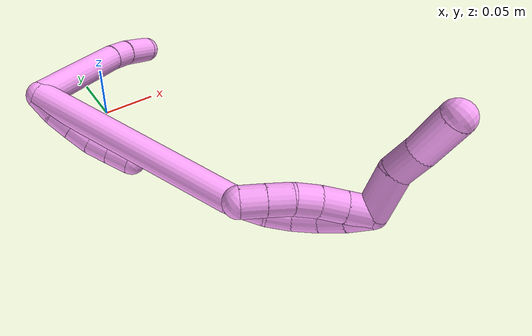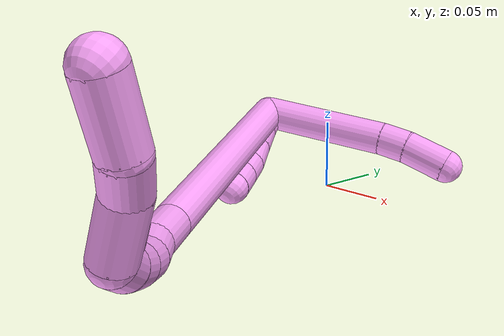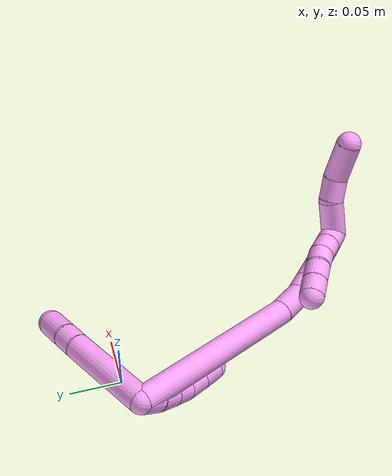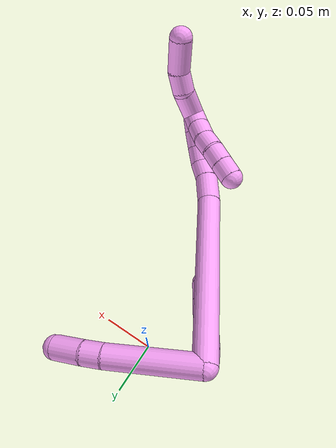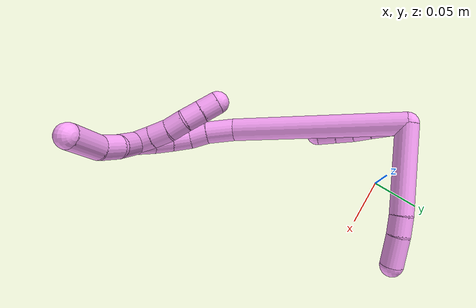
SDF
<sdf version="1.7">
 <world name="default">
  <model name="photoneo_s_sensor">
   <static>1</static>
   <pose>0 0 2 1.57079 1.57079 3.14159</pose>
   <link name="link">
    <inertial><mass>0.1</mass></inertial>
    <sensor name="sensor" type="depth">
     <update_rate>30</update_rate>
     <camera>
      <horizontal_fov>1.22</horizontal_fov>
      <image><width>1920</width><height>1200</height><format>B8G8R8</format></image>
      <clip><near>0.1</near><far>4</far></clip>
      <depth_camera><output>points</output></depth_camera>
     </camera>
     <plugin name="camera_plugin" filename="libgazebo_ros_depth_camera.so">
      <baseline>0.2</baseline>
      <alwaysOn>1</alwaysOn>
      <updateRate>0.0</updateRate>
      <cameraName>camera_ir</cameraName>
      <imageTopicName>/camera/color/image_raw</imageTopicName>
      <cameraInfoTopicName>/camera/color/camera_info</cameraInfoTopicName>
      <depthImageTopicName>/camera/depth/image_raw</depthImageTopicName>
      <depthImageCameraInfoTopicName>/camera/depth/camera_info</depthImageCameraInfoTopicName>
      <pointCloudTopicName>/camera/depth/points</pointCloudTopicName>
      <frameName>fr_optical</frameName>
      <pointCloudCutoff>0.1</pointCloudCutoff>
      <pointCloudCutoffMax>2.0</pointCloudCutoffMax>
      <distortionK1>0</distortionK1>
      <distortionK2>0</distortionK2>
      <distortionK3>0</distortionK3>
      <distortionT1>0</distortionT1>
      <distortionT2>0</distortionT2>
      <CxPrime>0</CxPrime>
      <Cx>0</Cx>
      <Cy>0</Cy>
      <focalLength>0</focalLength>
      <hackBaseline>0</hackBaseline>
     </plugin>
    </sensor>
   </link>
  </model>
  <model name="bin">
   <static>1</static>
   <link name="bottom">
    <collision name="collision-bottom">
     <pose>0 0 -0.01 0 -0 0</pose>
     <geometry><box><size>0.8 0.6 0.02</size></box></geometry>
     <surface>
      <friction><ode><mu>100</mu><mu2>100</mu2></ode></friction>
      <contact><collide_bitmask>65535</collide_bitmask></contact>
     </surface>
    </collision>
   </link>
   <link name="west_wall">
    <collision name="collision-west_wall">
     <pose>-0.41 0 0.1 0 -0 0</pose>
     <geometry><box><size>0.02 0.6 0.2</size></box></geometry>
     <surface>
      <friction><ode><mu>100</mu><mu2>100</mu2></ode></friction>
      <contact><collide_bitmask>65535</collide_bitmask></contact>
     </surface>
    </collision>
   </link>
   <link name="east_wall">
    <collision name="collision-east_wall">
     <pose>0.41 0 0.1 0 -0 0</pose>
     <geometry><box><size>0.02 0.6 0.2</size></box></geometry>
     <surface>
      <friction><ode><mu>100</mu><mu2>100</mu2></ode></friction>
      <contact><collide_bitmask>65535</collide_bitmask></contact>
     </surface>
    </collision>
   </link>
   <link name="south_wall">
    <collision name="collision-south_wall">
     <pose>0 -0.31 0.1 0 -0 0</pose>
     <geometry><box><size>0.8 0.02 0.2</size></box></geometry>
     <surface>
      <friction><ode><mu>100</mu><mu2>100</mu2></ode></friction>
      <contact><collide_bitmask>65535</collide_bitmask></contact>
     </surface>
    </collision>
   </link>
   <link name="north_wall">
    <collision name="collision-north_wall">
     <pose>0 0.31 0.1 0 -0 0</pose>
     <geometry><box><size>0.8 0.02 0.2</size></box></geometry>
     <surface>
      <friction><ode><mu>100</mu><mu2>100</mu2></ode></friction>
      <contact><collide_bitmask>65535</collide_bitmask></contact>
     </surface>
    </collision>
   </link>
  </model>
  <model name="4">
   <static>0</static>
   <link name="4">
    <collision name="collision-cylinder-e_1_2_8">
     <pose>-0.046162 -0.013557 -0.001276 1.66463 -1.28394 -1.37516</pose>
     <geometry><cylinder><radius>0.0125</radius><length>0.096257</length></cylinder></geometry>
     <surface>
      <friction><ode><mu>1.16</mu><mu2>1.16</mu2><slip1>0</slip1><slip2>0</slip2></ode></friction>
      <contact><ode><kp>1e+06</kp><kd>1</kd><max_vel>0</max_vel><min_depth>0.001</min_depth></ode></contact>
     </surface>
    </collision>
    <visual name="visual-cylinder-e_1_2_8">
     <pose>-0.046162 -0.013557 -0.001276 1.66463 -1.28394 -1.37516</pose>
     <geometry><cylinder><radius>0.0125</radius><length>0.096257</length></cylinder></geometry>
     <material><ambient>1 0.65098 0.996078 1</ambient></material>
    </visual>
    <collision name="collision-cylinder-e_2_8_9">
     <pose>-0.102461 -0.029706 -0.001824 1.29689 -1.3113 -1.0554</pose>
     <geometry><cylinder><radius>0.0125</radius><length>0.020978</length></cylinder></geometry>
     <surface>
      <friction><ode><mu>1.16</mu><mu2>1.16</mu2><slip1>0</slip1><slip2>0</slip2></ode></friction>
      <contact><ode><kp>1e+06</kp><kd>1</kd><max_vel>0</max_vel><min_depth>0.001</min_depth></ode></contact>
     </surface>
    </collision>
    <visual name="visual-cylinder-e_2_8_9">
     <pose>-0.102461 -0.029706 -0.001824 1.29689 -1.3113 -1.0554</pose>
     <geometry><cylinder><radius>0.0125</radius><length>0.020978</length></cylinder></geometry>
     <material><ambient>1 0.65098 0.996078 1</ambient></material>
    </visual>
    <collision name="collision-cylinder-e_3_9_6">
     <pose>-0.128496 -0.035063 0.00174 0.772987 -1.32658 -0.615768</pose>
     <geometry><cylinder><radius>0.0125</radius><length>0.032766</length></cylinder></geometry>
     <surface>
      <friction><ode><mu>1.16</mu><mu2>1.16</mu2><slip1>0</slip1><slip2>0</slip2></ode></friction>
      <contact><ode><kp>1e+06</kp><kd>1</kd><max_vel>0</max_vel><min_depth>0.001</min_depth></ode></contact>
     </surface>
    </collision>
    <visual name="visual-cylinder-e_3_9_6">
     <pose>-0.128496 -0.035063 0.00174 0.772987 -1.32658 -0.615768</pose>
     <geometry><cylinder><radius>0.0125</radius><length>0.032766</length></cylinder></geometry>
     <material><ambient>1 0.65098 0.996078 1</ambient></material>
    </visual>
    <collision name="collision-cylinder-e_1_2_10">
     <pose>-0.000845 7e-05 0.009964 -0.007064 -0.084554 0.000299</pose>
     <geometry><cylinder><radius>0.0125</radius><length>0.02</length></cylinder></geometry>
     <surface>
      <friction><ode><mu>1.16</mu><mu2>1.16</mu2><slip1>0</slip1><slip2>0</slip2></ode></friction>
      <contact><ode><kp>1e+06</kp><kd>1</kd><max_vel>0</max_vel><min_depth>0.001</min_depth></ode></contact>
     </surface>
    </collision>
    <visual name="visual-cylinder-e_1_2_10">
     <pose>-0.000845 7e-05 0.009964 -0.007064 -0.084554 0.000299</pose>
     <geometry><cylinder><radius>0.0125</radius><length>0.02</length></cylinder></geometry>
     <material><ambient>1 0.65098 0.996078 1</ambient></material>
    </visual>
    <collision name="collision-cylinder-e_2_10_11">
     <pose>-0.003195 -0.001184 0.029725 0.134389 -0.151197 -0.010194</pose>
     <geometry><cylinder><radius>0.0125</radius><length>0.02</length></cylinder></geometry>
     <surface>
      <friction><ode><mu>1.16</mu><mu2>1.16</mu2><slip1>0</slip1><slip2>0</slip2></ode></friction>
      <contact><ode><kp>1e+06</kp><kd>1</kd><max_vel>0</max_vel><min_depth>0.001</min_depth></ode></contact>
     </surface>
    </collision>
    <visual name="visual-cylinder-e_2_10_11">
     <pose>-0.003195 -0.001184 0.029725 0.134389 -0.151197 -0.010194</pose>
     <geometry><cylinder><radius>0.0125</radius><length>0.02</length></cylinder></geometry>
     <material><ambient>1 0.65098 0.996078 1</ambient></material>
    </visual>
    <collision name="collision-cylinder-e_3_11_12">
     <pose>-0.00639 -0.004105 0.049248 0.162734 -0.169644 -0.013867</pose>
     <geometry><cylinder><radius>0.0125</radius><length>0.02</length></cylinder></geometry>
     <surface>
      <friction><ode><mu>1.16</mu><mu2>1.16</mu2><slip1>0</slip1><slip2>0</slip2></ode></friction>
      <contact><ode><kp>1e+06</kp><kd>1</kd><max_vel>0</max_vel><min_depth>0.001</min_depth></ode></contact>
     </surface>
    </collision>
    <visual name="visual-cylinder-e_3_11_12">
     <pose>-0.00639 -0.004105 0.049248 0.162734 -0.169644 -0.013867</pose>
     <geometry><cylinder><radius>0.0125</radius><length>0.02</length></cylinder></geometry>
     <material><ambient>1 0.65098 0.996078 1</ambient></material>
    </visual>
    <collision name="collision-cylinder-e_4_12_13">
     <pose>-0.008591 -0.009868 0.068051 0.430279 -0.051297 -0.011212</pose>
     <geometry><cylinder><radius>0.0125</radius><length>0.02</length></cylinder></geometry>
     <surface>
      <friction><ode><mu>1.16</mu><mu2>1.16</mu2><slip1>0</slip1><slip2>0</slip2></ode></friction>
      <contact><ode><kp>1e+06</kp><kd>1</kd><max_vel>0</max_vel><min_depth>0.001</min_depth></ode></contact>
     </surface>
    </collision>
    <visual name="visual-cylinder-e_4_12_13">
     <pose>-0.008591 -0.009868 0.068051 0.430279 -0.051297 -0.011212</pose>
     <geometry><cylinder><radius>0.0125</radius><length>0.02</length></cylinder></geometry>
     <material><ambient>1 0.65098 0.996078 1</ambient></material>
    </visual>
    <collision name="collision-cylinder-e_5_13_5">
     <pose>-0.009593 -0.018412 0.086105 0.453738 -0.048936 -0.011299</pose>
     <geometry><cylinder><radius>0.0125</radius><length>0.02</length></cylinder></geometry>
     <surface>
      <friction><ode><mu>1.16</mu><mu2>1.16</mu2><slip1>0</slip1><slip2>0</slip2></ode></friction>
      <contact><ode><kp>1e+06</kp><kd>1</kd><max_vel>0</max_vel><min_depth>0.001</min_depth></ode></contact>
     </surface>
    </collision>
    <visual name="visual-cylinder-e_5_13_5">
     <pose>-0.009593 -0.018412 0.086105 0.453738 -0.048936 -0.011299</pose>
     <geometry><cylinder><radius>0.0125</radius><length>0.02</length></cylinder></geometry>
     <material><ambient>1 0.65098 0.996078 1</ambient></material>
    </visual>
    <collision name="collision-cylinder-e_1_2_14">
     <pose>0.000119 -0.038838 0.085902 0.424619 0.001257 0.000271</pose>
     <geometry><cylinder><radius>0.0125</radius><length>0.188547</length></cylinder></geometry>
     <surface>
      <friction><ode><mu>1.16</mu><mu2>1.16</mu2><slip1>0</slip1><slip2>0</slip2></ode></friction>
      <contact><ode><kp>1e+06</kp><kd>1</kd><max_vel>0</max_vel><min_depth>0.001</min_depth></ode></contact>
     </surface>
    </collision>
    <visual name="visual-cylinder-e_1_2_14">
     <pose>0.000119 -0.038838 0.085902 0.424619 0.001257 0.000271</pose>
     <geometry><cylinder><radius>0.0125</radius><length>0.188547</length></cylinder></geometry>
     <material><ambient>1 0.65098 0.996078 1</ambient></material>
    </visual>
    <collision name="collision-cylinder-e_2_14_15">
     <pose>-0.000522 -0.086441 0.184568 0.601698 -0.048962 -0.015194</pose>
     <geometry><cylinder><radius>0.0125</radius><length>0.031007</length></cylinder></geometry>
     <surface>
      <friction><ode><mu>1.16</mu><mu2>1.16</mu2><slip1>0</slip1><slip2>0</slip2></ode></friction>
      <contact><ode><kp>1e+06</kp><kd>1</kd><max_vel>0</max_vel><min_depth>0.001</min_depth></ode></contact>
     </surface>
    </collision>
    <visual name="visual-cylinder-e_2_14_15">
     <pose>-0.000522 -0.086441 0.184568 0.601698 -0.048962 -0.015194</pose>
     <geometry><cylinder><radius>0.0125</radius><length>0.031007</length></cylinder></geometry>
     <material><ambient>1 0.65098 0.996078 1</ambient></material>
    </visual>
    <collision name="collision-cylinder-e_3_15_16">
     <pose>-0.003487 -0.101449 0.204903 0.689615 -0.221201 -0.079729</pose>
     <geometry><cylinder><radius>0.0125</radius><length>0.020113</length></cylinder></geometry>
     <surface>
      <friction><ode><mu>1.16</mu><mu2>1.16</mu2><slip1>0</slip1><slip2>0</slip2></ode></friction>
      <contact><ode><kp>1e+06</kp><kd>1</kd><max_vel>0</max_vel><min_depth>0.001</min_depth></ode></contact>
     </surface>
    </collision>
    <visual name="visual-cylinder-e_3_15_16">
     <pose>-0.003487 -0.101449 0.204903 0.689615 -0.221201 -0.079729</pose>
     <geometry><cylinder><radius>0.0125</radius><length>0.020113</length></cylinder></geometry>
     <material><ambient>1 0.65098 0.996078 1</ambient></material>
    </visual>
    <collision name="collision-cylinder-e_4_16_17">
     <pose>-0.006242 -0.115503 0.218854 0.885836 -0.05431 -0.025767</pose>
     <geometry><cylinder><radius>0.0125</radius><length>0.020203</length></cylinder></geometry>
     <surface>
      <friction><ode><mu>1.16</mu><mu2>1.16</mu2><slip1>0</slip1><slip2>0</slip2></ode></friction>
      <contact><ode><kp>1e+06</kp><kd>1</kd><max_vel>0</max_vel><min_depth>0.001</min_depth></ode></contact>
     </surface>
    </collision>
    <visual name="visual-cylinder-e_4_16_17">
     <pose>-0.006242 -0.115503 0.218854 0.885836 -0.05431 -0.025767</pose>
     <geometry><cylinder><radius>0.0125</radius><length>0.020203</length></cylinder></geometry>
     <material><ambient>1 0.65098 0.996078 1</ambient></material>
    </visual>
    <collision name="collision-cylinder-e_5_17_18">
     <pose>-0.006835 -0.131711 0.230722 0.991988 -0.004521 -0.002446</pose>
     <geometry><cylinder><radius>0.0125</radius><length>0.020062</length></cylinder></geometry>
     <surface>
      <friction><ode><mu>1.16</mu><mu2>1.16</mu2><slip1>0</slip1><slip2>0</slip2></ode></friction>
      <contact><ode><kp>1e+06</kp><kd>1</kd><max_vel>0</max_vel><min_depth>0.001</min_depth></ode></contact>
     </surface>
    </collision>
    <visual name="visual-cylinder-e_5_17_18">
     <pose>-0.006835 -0.131711 0.230722 0.991988 -0.004521 -0.002446</pose>
     <geometry><cylinder><radius>0.0125</radius><length>0.020062</length></cylinder></geometry>
     <material><ambient>1 0.65098 0.996078 1</ambient></material>
    </visual>
    <collision name="collision-cylinder-e_6_18_1">
     <pose>-0.00604 -0.149271 0.240212 1.15889 0.08388 0.054907</pose>
     <geometry><cylinder><radius>0.0125</radius><length>0.020069</length></cylinder></geometry>
     <surface>
      <friction><ode><mu>1.16</mu><mu2>1.16</mu2><slip1>0</slip1><slip2>0</slip2></ode></friction>
      <contact><ode><kp>1e+06</kp><kd>1</kd><max_vel>0</max_vel><min_depth>0.001</min_depth></ode></contact>
     </surface>
    </collision>
    <visual name="visual-cylinder-e_6_18_1">
     <pose>-0.00604 -0.149271 0.240212 1.15889 0.08388 0.054907</pose>
     <geometry><cylinder><radius>0.0125</radius><length>0.020069</length></cylinder></geometry>
     <material><ambient>1 0.65098 0.996078 1</ambient></material>
    </visual>
    <collision name="collision-cylinder-e_1_1_19">
     <pose>-0.004008 -0.17529 0.236136 2.01776 0.063651 0.101042</pose>
     <geometry><cylinder><radius>0.0125</radius><length>0.037461</length></cylinder></geometry>
     <surface>
      <friction><ode><mu>1.16</mu><mu2>1.16</mu2><slip1>0</slip1><slip2>0</slip2></ode></friction>
      <contact><ode><kp>1e+06</kp><kd>1</kd><max_vel>0</max_vel><min_depth>0.001</min_depth></ode></contact>
     </surface>
    </collision>
    <visual name="visual-cylinder-e_1_1_19">
     <pose>-0.004008 -0.17529 0.236136 2.01776 0.063651 0.101042</pose>
     <geometry><cylinder><radius>0.0125</radius><length>0.037461</length></cylinder></geometry>
     <material><ambient>1 0.65098 0.996078 1</ambient></material>
    </visual>
    <collision name="collision-cylinder-e_2_19_20">
     <pose>-0.001315 -0.203814 0.226824 1.67601 0.127288 0.141392</pose>
     <geometry><cylinder><radius>0.0125</radius><length>0.023657</length></cylinder></geometry>
     <surface>
      <friction><ode><mu>1.16</mu><mu2>1.16</mu2><slip1>0</slip1><slip2>0</slip2></ode></friction>
      <contact><ode><kp>1e+06</kp><kd>1</kd><max_vel>0</max_vel><min_depth>0.001</min_depth></ode></contact>
     </surface>
    </collision>
    <visual name="visual-cylinder-e_2_19_20">
     <pose>-0.001315 -0.203814 0.226824 1.67601 0.127288 0.141392</pose>
     <geometry><cylinder><radius>0.0125</radius><length>0.023657</length></cylinder></geometry>
     <material><ambient>1 0.65098 0.996078 1</ambient></material>
    </visual>
    <collision name="collision-cylinder-e_3_20_4">
     <pose>0.008381 -0.232539 0.221135 1.82639 0.435079 0.557529</pose>
     <geometry><cylinder><radius>0.0125</radius><length>0.038882</length></cylinder></geometry>
     <surface>
      <friction><ode><mu>1.16</mu><mu2>1.16</mu2><slip1>0</slip1><slip2>0</slip2></ode></friction>
      <contact><ode><kp>1e+06</kp><kd>1</kd><max_vel>0</max_vel><min_depth>0.001</min_depth></ode></contact>
     </surface>
    </collision>
    <visual name="visual-cylinder-e_3_20_4">
     <pose>0.008381 -0.232539 0.221135 1.82639 0.435079 0.557529</pose>
     <geometry><cylinder><radius>0.0125</radius><length>0.038882</length></cylinder></geometry>
     <material><ambient>1 0.65098 0.996078 1</ambient></material>
    </visual>
    <collision name="collision-cylinder-e_1_1_21">
     <pose>-0.00227 -0.153043 0.236319 -2.54258 0.297316 -0.90314</pose>
     <geometry><cylinder><radius>0.0125</radius><length>0.02</length></cylinder></geometry>
     <surface>
      <friction><ode><mu>1.16</mu><mu2>1.16</mu2><slip1>0</slip1><slip2>0</slip2></ode></friction>
      <contact><ode><kp>1e+06</kp><kd>1</kd><max_vel>0</max_vel><min_depth>0.001</min_depth></ode></contact>
     </surface>
    </collision>
    <visual name="visual-cylinder-e_1_1_21">
     <pose>-0.00227 -0.153043 0.236319 -2.54258 0.297316 -0.90314</pose>
     <geometry><cylinder><radius>0.0125</radius><length>0.02</length></cylinder></geometry>
     <material><ambient>1 0.65098 0.996078 1</ambient></material>
    </visual>
    <collision name="collision-cylinder-e_2_21_22">
     <pose>0.003785 -0.142369 0.220528 -2.55184 0.31782 -0.971039</pose>
     <geometry><cylinder><radius>0.0125</radius><length>0.02</length></cylinder></geometry>
     <surface>
      <friction><ode><mu>1.16</mu><mu2>1.16</mu2><slip1>0</slip1><slip2>0</slip2></ode></friction>
      <contact><ode><kp>1e+06</kp><kd>1</kd><max_vel>0</max_vel><min_depth>0.001</min_depth></ode></contact>
     </surface>
    </collision>
    <visual name="visual-cylinder-e_2_21_22">
     <pose>0.003785 -0.142369 0.220528 -2.55184 0.31782 -0.971039</pose>
     <geometry><cylinder><radius>0.0125</radius><length>0.02</length></cylinder></geometry>
     <material><ambient>1 0.65098 0.996078 1</ambient></material>
    </visual>
    <collision name="collision-cylinder-e_3_22_23">
     <pose>0.011525 -0.131844 0.205476 -2.50944 0.479696 -1.28416</pose>
     <geometry><cylinder><radius>0.0125</radius><length>0.02</length></cylinder></geometry>
     <surface>
      <friction><ode><mu>1.16</mu><mu2>1.16</mu2><slip1>0</slip1><slip2>0</slip2></ode></friction>
      <contact><ode><kp>1e+06</kp><kd>1</kd><max_vel>0</max_vel><min_depth>0.001</min_depth></ode></contact>
     </surface>
    </collision>
    <visual name="visual-cylinder-e_3_22_23">
     <pose>0.011525 -0.131844 0.205476 -2.50944 0.479696 -1.28416</pose>
     <geometry><cylinder><radius>0.0125</radius><length>0.02</length></cylinder></geometry>
     <material><ambient>1 0.65098 0.996078 1</ambient></material>
    </visual>
    <collision name="collision-cylinder-e_4_23_24">
     <pose>0.020275 -0.119818 0.192246 -2.301 0.426255 -0.9019</pose>
     <geometry><cylinder><radius>0.0125</radius><length>0.02</length></cylinder></geometry>
     <surface>
      <friction><ode><mu>1.16</mu><mu2>1.16</mu2><slip1>0</slip1><slip2>0</slip2></ode></friction>
      <contact><ode><kp>1e+06</kp><kd>1</kd><max_vel>0</max_vel><min_depth>0.001</min_depth></ode></contact>
     </surface>
    </collision>
    <visual name="visual-cylinder-e_4_23_24">
     <pose>0.020275 -0.119818 0.192246 -2.301 0.426255 -0.9019</pose>
     <geometry><cylinder><radius>0.0125</radius><length>0.02</length></cylinder></geometry>
     <material><ambient>1 0.65098 0.996078 1</ambient></material>
    </visual>
    <collision name="collision-cylinder-e_5_24_3">
     <pose>0.028571 -0.106146 0.180237 -2.28206 0.429221 -0.887811</pose>
     <geometry><cylinder><radius>0.0125</radius><length>0.02</length></cylinder></geometry>
     <surface>
      <friction><ode><mu>1.16</mu><mu2>1.16</mu2><slip1>0</slip1><slip2>0</slip2></ode></friction>
      <contact><ode><kp>1e+06</kp><kd>1</kd><max_vel>0</max_vel><min_depth>0.001</min_depth></ode></contact>
     </surface>
    </collision>
    <visual name="visual-cylinder-e_5_24_3">
     <pose>0.028571 -0.106146 0.180237 -2.28206 0.429221 -0.887811</pose>
     <geometry><cylinder><radius>0.0125</radius><length>0.02</length></cylinder></geometry>
     <material><ambient>1 0.65098 0.996078 1</ambient></material>
    </visual>
    <collision name="collision-sphere-3">
     <pose>0.032732 -0.099258 0.174301 0 -0 0</pose>
     <geometry><sphere><radius>0.0125</radius></sphere></geometry>
     <surface>
      <friction><ode><mu>1.16</mu><mu2>1.16</mu2><slip1>0</slip1><slip2>0</slip2></ode></friction>
      <contact><ode><kp>1e+06</kp><kd>1</kd><max_vel>0</max_vel><min_depth>0.001</min_depth></ode></contact>
     </surface>
    </collision>
    <visual name="visual-sphere-3">
     <pose>0.032732 -0.099258 0.174301 0 -0 0</pose>
     <geometry><sphere><radius>0.0125</radius></sphere></geometry>
     <material><ambient>1 0.65098 0.996078 1</ambient></material>
    </visual>
    <collision name="collision-sphere-24">
     <pose>0.024409 -0.113035 0.186172 0 -0 0</pose>
     <geometry><sphere><radius>0.0125</radius></sphere></geometry>
     <surface>
      <friction><ode><mu>1.16</mu><mu2>1.16</mu2><slip1>0</slip1><slip2>0</slip2></ode></friction>
      <contact><ode><kp>1e+06</kp><kd>1</kd><max_vel>0</max_vel><min_depth>0.001</min_depth></ode></contact>
     </surface>
    </collision>
    <visual name="visual-sphere-24">
     <pose>0.024409 -0.113035 0.186172 0 -0 0</pose>
     <geometry><sphere><radius>0.0125</radius></sphere></geometry>
     <material><ambient>1 0.65098 0.996078 1</ambient></material>
    </visual>
    <collision name="collision-sphere-23">
     <pose>0.01614 -0.126602 0.198319 0 -0 0</pose>
     <geometry><sphere><radius>0.0125</radius></sphere></geometry>
     <surface>
      <friction><ode><mu>1.16</mu><mu2>1.16</mu2><slip1>0</slip1><slip2>0</slip2></ode></friction>
      <contact><ode><kp>1e+06</kp><kd>1</kd><max_vel>0</max_vel><min_depth>0.001</min_depth></ode></contact>
     </surface>
    </collision>
    <visual name="visual-sphere-23">
     <pose>0.01614 -0.126602 0.198319 0 -0 0</pose>
     <geometry><sphere><radius>0.0125</radius></sphere></geometry>
     <material><ambient>1 0.65098 0.996078 1</ambient></material>
    </visual>
    <collision name="collision-sphere-22">
     <pose>0.00691 -0.137086 0.212633 0 -0 0</pose>
     <geometry><sphere><radius>0.0125</radius></sphere></geometry>
     <surface>
      <friction><ode><mu>1.16</mu><mu2>1.16</mu2><slip1>0</slip1><slip2>0</slip2></ode></friction>
      <contact><ode><kp>1e+06</kp><kd>1</kd><max_vel>0</max_vel><min_depth>0.001</min_depth></ode></contact>
     </surface>
    </collision>
    <visual name="visual-sphere-22">
     <pose>0.00691 -0.137086 0.212633 0 -0 0</pose>
     <geometry><sphere><radius>0.0125</radius></sphere></geometry>
     <material><ambient>1 0.65098 0.996078 1</ambient></material>
    </visual>
    <collision name="collision-sphere-21">
     <pose>0.00066 -0.147652 0.228422 0 -0 0</pose>
     <geometry><sphere><radius>0.0125</radius></sphere></geometry>
     <surface>
      <friction><ode><mu>1.16</mu><mu2>1.16</mu2><slip1>0</slip1><slip2>0</slip2></ode></friction>
      <contact><ode><kp>1e+06</kp><kd>1</kd><max_vel>0</max_vel><min_depth>0.001</min_depth></ode></contact>
     </surface>
    </collision>
    <visual name="visual-sphere-21">
     <pose>0.00066 -0.147652 0.228422 0 -0 0</pose>
     <geometry><sphere><radius>0.0125</radius></sphere></geometry>
     <material><ambient>1 0.65098 0.996078 1</ambient></material>
    </visual>
    <collision name="collision-sphere-4">
     <pose>0.016575 -0.249596 0.216678 0 -0 0</pose>
     <geometry><sphere><radius>0.0125</radius></sphere></geometry>
     <surface>
      <friction><ode><mu>1.16</mu><mu2>1.16</mu2><slip1>0</slip1><slip2>0</slip2></ode></friction>
      <contact><ode><kp>1e+06</kp><kd>1</kd><max_vel>0</max_vel><min_depth>0.001</min_depth></ode></contact>
     </surface>
    </collision>
    <visual name="visual-sphere-4">
     <pose>0.016575 -0.249596 0.216678 0 -0 0</pose>
     <geometry><sphere><radius>0.0125</radius></sphere></geometry>
     <material><ambient>1 0.65098 0.996078 1</ambient></material>
    </visual>
    <collision name="collision-sphere-20">
     <pose>0.000187 -0.215482 0.225592 0 -0 0</pose>
     <geometry><sphere><radius>0.0125</radius></sphere></geometry>
     <surface>
      <friction><ode><mu>1.16</mu><mu2>1.16</mu2><slip1>0</slip1><slip2>0</slip2></ode></friction>
      <contact><ode><kp>1e+06</kp><kd>1</kd><max_vel>0</max_vel><min_depth>0.001</min_depth></ode></contact>
     </surface>
    </collision>
    <visual name="visual-sphere-20">
     <pose>0.000187 -0.215482 0.225592 0 -0 0</pose>
     <geometry><sphere><radius>0.0125</radius></sphere></geometry>
     <material><ambient>1 0.65098 0.996078 1</ambient></material>
    </visual>
    <collision name="collision-sphere-11">
     <pose>-0.004702 -0.002508 0.039522 0 -0 0</pose>
     <geometry><sphere><radius>0.0125</radius></sphere></geometry>
     <surface>
      <friction><ode><mu>1.16</mu><mu2>1.16</mu2><slip1>0</slip1><slip2>0</slip2></ode></friction>
      <contact><ode><kp>1e+06</kp><kd>1</kd><max_vel>0</max_vel><min_depth>0.001</min_depth></ode></contact>
     </surface>
    </collision>
    <visual name="visual-sphere-11">
     <pose>-0.004702 -0.002508 0.039522 0 -0 0</pose>
     <geometry><sphere><radius>0.0125</radius></sphere></geometry>
     <material><ambient>1 0.65098 0.996078 1</ambient></material>
    </visual>
    <collision name="collision-sphere-10">
     <pose>-0.001689 0.000141 0.019928 0 -0 0</pose>
     <geometry><sphere><radius>0.0125</radius></sphere></geometry>
     <surface>
      <friction><ode><mu>1.16</mu><mu2>1.16</mu2><slip1>0</slip1><slip2>0</slip2></ode></friction>
      <contact><ode><kp>1e+06</kp><kd>1</kd><max_vel>0</max_vel><min_depth>0.001</min_depth></ode></contact>
     </surface>
    </collision>
    <visual name="visual-sphere-10">
     <pose>-0.001689 0.000141 0.019928 0 -0 0</pose>
     <geometry><sphere><radius>0.0125</radius></sphere></geometry>
     <material><ambient>1 0.65098 0.996078 1</ambient></material>
    </visual>
    <collision name="collision-sphere-6">
     <pose>-0.144392 -0.037829 0.004576 0 -0 0</pose>
     <geometry><sphere><radius>0.0125</radius></sphere></geometry>
     <surface>
      <friction><ode><mu>1.16</mu><mu2>1.16</mu2><slip1>0</slip1><slip2>0</slip2></ode></friction>
      <contact><ode><kp>1e+06</kp><kd>1</kd><max_vel>0</max_vel><min_depth>0.001</min_depth></ode></contact>
     </surface>
    </collision>
    <visual name="visual-sphere-6">
     <pose>-0.144392 -0.037829 0.004576 0 -0 0</pose>
     <geometry><sphere><radius>0.0125</radius></sphere></geometry>
     <material><ambient>1 0.65098 0.996078 1</ambient></material>
    </visual>
    <collision name="collision-sphere-9">
     <pose>-0.112599 -0.032297 -0.001096 0 -0 0</pose>
     <geometry><sphere><radius>0.0125</radius></sphere></geometry>
     <surface>
      <friction><ode><mu>1.16</mu><mu2>1.16</mu2><slip1>0</slip1><slip2>0</slip2></ode></friction>
      <contact><ode><kp>1e+06</kp><kd>1</kd><max_vel>0</max_vel><min_depth>0.001</min_depth></ode></contact>
     </surface>
    </collision>
    <visual name="visual-sphere-9">
     <pose>-0.112599 -0.032297 -0.001096 0 -0 0</pose>
     <geometry><sphere><radius>0.0125</radius></sphere></geometry>
     <material><ambient>1 0.65098 0.996078 1</ambient></material>
    </visual>
    <collision name="collision-sphere-2">
     <geometry><sphere><radius>0.0125</radius></sphere></geometry>
     <surface>
      <friction><ode><mu>1.16</mu><mu2>1.16</mu2><slip1>0</slip1><slip2>0</slip2></ode></friction>
      <contact><ode><kp>1e+06</kp><kd>1</kd><max_vel>0</max_vel><min_depth>0.001</min_depth></ode></contact>
     </surface>
    </collision>
    <visual name="visual-sphere-2">
     <geometry><sphere><radius>0.0125</radius></sphere></geometry>
     <material><ambient>1 0.65098 0.996078 1</ambient></material>
    </visual>
    <collision name="collision-sphere-19">
     <pose>-0.002816 -0.192146 0.228057 0 -0 0</pose>
     <geometry><sphere><radius>0.0125</radius></sphere></geometry>
     <surface>
      <friction><ode><mu>1.16</mu><mu2>1.16</mu2><slip1>0</slip1><slip2>0</slip2></ode></friction>
      <contact><ode><kp>1e+06</kp><kd>1</kd><max_vel>0</max_vel><min_depth>0.001</min_depth></ode></contact>
     </surface>
    </collision>
    <visual name="visual-sphere-19">
     <pose>-0.002816 -0.192146 0.228057 0 -0 0</pose>
     <geometry><sphere><radius>0.0125</radius></sphere></geometry>
     <material><ambient>1 0.65098 0.996078 1</ambient></material>
    </visual>
    <collision name="collision-sphere-8">
     <pose>-0.092323 -0.027115 -0.002552 0 -0 0</pose>
     <geometry><sphere><radius>0.0125</radius></sphere></geometry>
     <surface>
      <friction><ode><mu>1.16</mu><mu2>1.16</mu2><slip1>0</slip1><slip2>0</slip2></ode></friction>
      <contact><ode><kp>1e+06</kp><kd>1</kd><max_vel>0</max_vel><min_depth>0.001</min_depth></ode></contact>
     </surface>
    </collision>
    <visual name="visual-sphere-8">
     <pose>-0.092323 -0.027115 -0.002552 0 -0 0</pose>
     <geometry><sphere><radius>0.0125</radius></sphere></geometry>
     <material><ambient>1 0.65098 0.996078 1</ambient></material>
    </visual>
    <collision name="collision-sphere-12">
     <pose>-0.008078 -0.005702 0.058974 0 -0 0</pose>
     <geometry><sphere><radius>0.0125</radius></sphere></geometry>
     <surface>
      <friction><ode><mu>1.16</mu><mu2>1.16</mu2><slip1>0</slip1><slip2>0</slip2></ode></friction>
      <contact><ode><kp>1e+06</kp><kd>1</kd><max_vel>0</max_vel><min_depth>0.001</min_depth></ode></contact>
     </surface>
    </collision>
    <visual name="visual-sphere-12">
     <pose>-0.008078 -0.005702 0.058974 0 -0 0</pose>
     <geometry><sphere><radius>0.0125</radius></sphere></geometry>
     <material><ambient>1 0.65098 0.996078 1</ambient></material>
    </visual>
    <collision name="collision-sphere-13">
     <pose>-0.009104 -0.014034 0.077127 0 -0 0</pose>
     <geometry><sphere><radius>0.0125</radius></sphere></geometry>
     <surface>
      <friction><ode><mu>1.16</mu><mu2>1.16</mu2><slip1>0</slip1><slip2>0</slip2></ode></friction>
      <contact><ode><kp>1e+06</kp><kd>1</kd><max_vel>0</max_vel><min_depth>0.001</min_depth></ode></contact>
     </surface>
    </collision>
    <visual name="visual-sphere-13">
     <pose>-0.009104 -0.014034 0.077127 0 -0 0</pose>
     <geometry><sphere><radius>0.0125</radius></sphere></geometry>
     <material><ambient>1 0.65098 0.996078 1</ambient></material>
    </visual>
    <collision name="collision-sphere-5">
     <pose>-0.010082 -0.02279 0.095082 0 -0 0</pose>
     <geometry><sphere><radius>0.0125</radius></sphere></geometry>
     <surface>
      <friction><ode><mu>1.16</mu><mu2>1.16</mu2><slip1>0</slip1><slip2>0</slip2></ode></friction>
      <contact><ode><kp>1e+06</kp><kd>1</kd><max_vel>0</max_vel><min_depth>0.001</min_depth></ode></contact>
     </surface>
    </collision>
    <visual name="visual-sphere-5">
     <pose>-0.010082 -0.02279 0.095082 0 -0 0</pose>
     <geometry><sphere><radius>0.0125</radius></sphere></geometry>
     <material><ambient>1 0.65098 0.996078 1</ambient></material>
    </visual>
    <collision name="collision-sphere-14">
     <pose>0.000237 -0.077676 0.171803 0 -0 0</pose>
     <geometry><sphere><radius>0.0125</radius></sphere></geometry>
     <surface>
      <friction><ode><mu>1.16</mu><mu2>1.16</mu2><slip1>0</slip1><slip2>0</slip2></ode></friction>
      <contact><ode><kp>1e+06</kp><kd>1</kd><max_vel>0</max_vel><min_depth>0.001</min_depth></ode></contact>
     </surface>
    </collision>
    <visual name="visual-sphere-14">
     <pose>0.000237 -0.077676 0.171803 0 -0 0</pose>
     <geometry><sphere><radius>0.0125</radius></sphere></geometry>
     <material><ambient>1 0.65098 0.996078 1</ambient></material>
    </visual>
    <collision name="collision-sphere-15">
     <pose>-0.001281 -0.095207 0.197334 0 -0 0</pose>
     <geometry><sphere><radius>0.0125</radius></sphere></geometry>
     <surface>
      <friction><ode><mu>1.16</mu><mu2>1.16</mu2><slip1>0</slip1><slip2>0</slip2></ode></friction>
      <contact><ode><kp>1e+06</kp><kd>1</kd><max_vel>0</max_vel><min_depth>0.001</min_depth></ode></contact>
     </surface>
    </collision>
    <visual name="visual-sphere-15">
     <pose>-0.001281 -0.095207 0.197334 0 -0 0</pose>
     <geometry><sphere><radius>0.0125</radius></sphere></geometry>
     <material><ambient>1 0.65098 0.996078 1</ambient></material>
    </visual>
    <collision name="collision-sphere-16">
     <pose>-0.005693 -0.107691 0.212473 0 -0 0</pose>
     <geometry><sphere><radius>0.0125</radius></sphere></geometry>
     <surface>
      <friction><ode><mu>1.16</mu><mu2>1.16</mu2><slip1>0</slip1><slip2>0</slip2></ode></friction>
      <contact><ode><kp>1e+06</kp><kd>1</kd><max_vel>0</max_vel><min_depth>0.001</min_depth></ode></contact>
     </surface>
    </collision>
    <visual name="visual-sphere-16">
     <pose>-0.005693 -0.107691 0.212473 0 -0 0</pose>
     <geometry><sphere><radius>0.0125</radius></sphere></geometry>
     <material><ambient>1 0.65098 0.996078 1</ambient></material>
    </visual>
    <collision name="collision-sphere-17">
     <pose>-0.00679 -0.123314 0.225235 0 -0 0</pose>
     <geometry><sphere><radius>0.0125</radius></sphere></geometry>
     <surface>
      <friction><ode><mu>1.16</mu><mu2>1.16</mu2><slip1>0</slip1><slip2>0</slip2></ode></friction>
      <contact><ode><kp>1e+06</kp><kd>1</kd><max_vel>0</max_vel><min_depth>0.001</min_depth></ode></contact>
     </surface>
    </collision>
    <visual name="visual-sphere-17">
     <pose>-0.00679 -0.123314 0.225235 0 -0 0</pose>
     <geometry><sphere><radius>0.0125</radius></sphere></geometry>
     <material><ambient>1 0.65098 0.996078 1</ambient></material>
    </visual>
    <collision name="collision-sphere-18">
     <pose>-0.006881 -0.140108 0.236209 0 -0 0</pose>
     <geometry><sphere><radius>0.0125</radius></sphere></geometry>
     <surface>
      <friction><ode><mu>1.16</mu><mu2>1.16</mu2><slip1>0</slip1><slip2>0</slip2></ode></friction>
      <contact><ode><kp>1e+06</kp><kd>1</kd><max_vel>0</max_vel><min_depth>0.001</min_depth></ode></contact>
     </surface>
    </collision>
    <visual name="visual-sphere-18">
     <pose>-0.006881 -0.140108 0.236209 0 -0 0</pose>
     <geometry><sphere><radius>0.0125</radius></sphere></geometry>
     <material><ambient>1 0.65098 0.996078 1</ambient></material>
    </visual>
    <collision name="collision-sphere-1">
     <pose>-0.005199 -0.158434 0.244215 0 -0 0</pose>
     <geometry><sphere><radius>0.0125</radius></sphere></geometry>
     <surface>
      <friction><ode><mu>1.16</mu><mu2>1.16</mu2><slip1>0</slip1><slip2>0</slip2></ode></friction>
      <contact><ode><kp>1e+06</kp><kd>1</kd><max_vel>0</max_vel><min_depth>0.001</min_depth></ode></contact>
     </surface>
    </collision>
    <visual name="visual-sphere-1">
     <pose>-0.005199 -0.158434 0.244215 0 -0 0</pose>
     <geometry><sphere><radius>0.0125</radius></sphere></geometry>
     <material><ambient>1 0.65098 0.996078 1</ambient></material>
    </visual>
    <inertial>
     <pose>-0.013922 -0.076342 0.117567 0 -0 0</pose>
     <mass>0.75</mass>
     <inertia>
      <ixx>0.000572</ixx>
      <ixy>0</ixy>
      <ixz>0</ixz>
      <iyy>0.000558</iyy>
      <iyz>0</iyz>
      <izz>0.000367</izz>
     </inertia>
    </inertial>
   </link>
   <pose>-0.059667 -0.007906 0.05167 -2.21238 -0.406468 -2.53042</pose>
  </model>
 </world>
</sdf>
